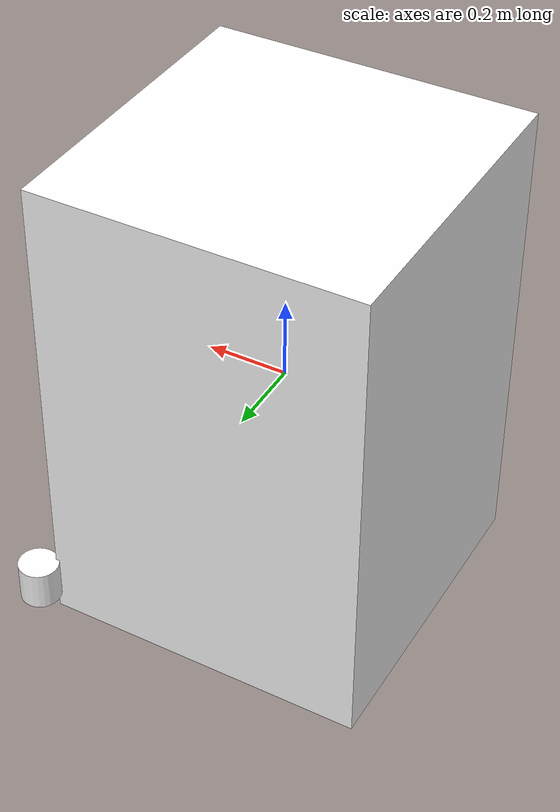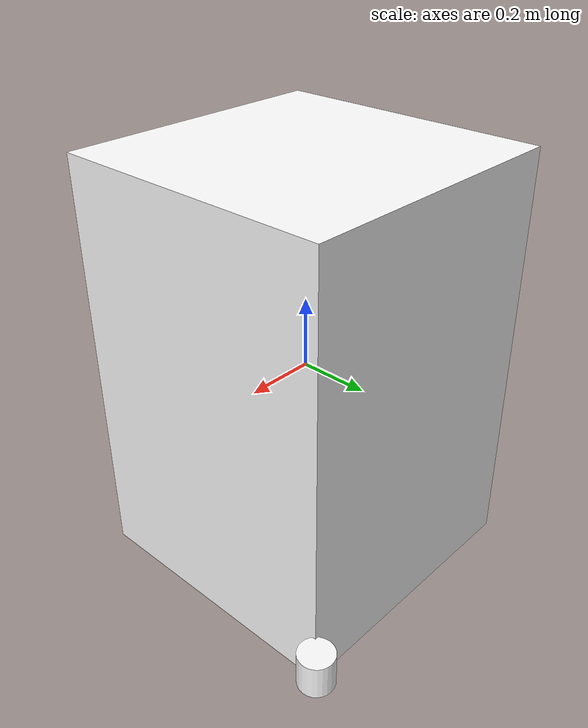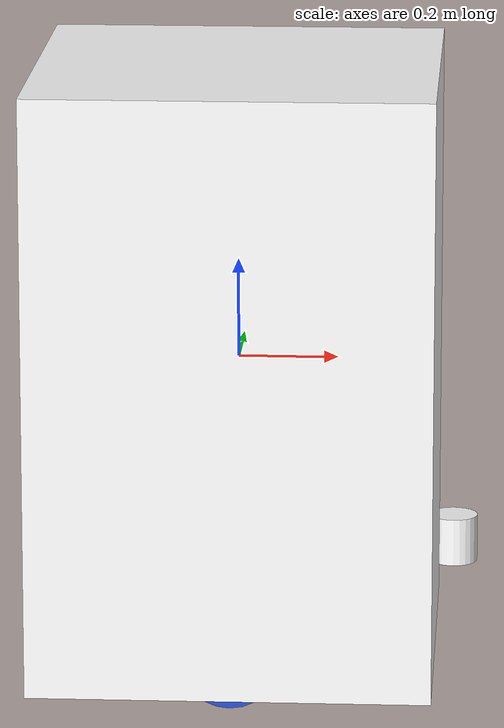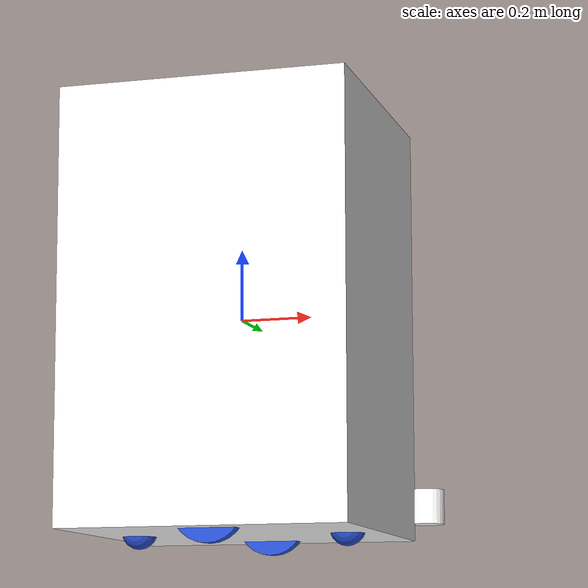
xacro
<?xml version="1.0" ?>
<robot name="m2wr" xmlns:xacro="http://www.ros.org/wiki/xacro">

  <material name="black">
    <color rgba="0.0 0.0 0.0 1.0"/>
  </material>
  <material name="blue">
    <color rgba="0.203125 0.23828125 0.28515625 1.0"/>
  </material>
  <material name="green">
    <color rgba="0.0 0.8 0.0 1.0"/>
  </material>
  <material name="grey">
    <color rgba="0.2 0.2 0.2 1.0"/>
  </material>
  <material name="orange">
    <color rgba="1.0 0.423529411765 0.0392156862745 1.0"/>
  </material>
  <material name="brown">
    <color rgba="0.870588235294 0.811764705882 0.764705882353 1.0"/>
  </material>
  <material name="red">
    <color rgba="0.80078125 0.12890625 0.1328125 1.0"/>
  </material>
  <material name="white">
    <color rgba="1.0 1.0 1.0 1.0"/>
  </material>

  <gazebo reference="link_chassis">
    <material>Gazebo/White</material>
  </gazebo>
  <gazebo reference="link_left_wheel">
    <material>Gazebo/Blue</material>
  </gazebo>
  <gazebo reference="link_right_wheel">
    <material>Gazebo/Blue</material>
  </gazebo>

  <gazebo reference="link_front_wheel">
    <material>Gazebo/Blue</material>
  </gazebo>

  <gazebo reference="link_back_wheel">
    <material>Gazebo/Blue</material>
  </gazebo>

 <gazebo reference="sensor_laser">
    <material>Gazebo/Red</material>
  </gazebo>

  <gazebo>
    <plugin filename="libgazebo_ros_diff_drive.so" name="differential_drive_controller">
      <legacyMode>false</legacyMode>
      <alwaysOn>true</alwaysOn>
      <updateRate>20</updateRate>
      <leftJoint>joint_left_wheel</leftJoint>
      <rightJoint>joint_right_wheel</rightJoint>
      <frontJoint>joint_front_wheel</frontJoint>
      <backJoint>joint_back_wheel</backJoint>
      <wheelSeparation>0.2</wheelSeparation>
      <wheelDiameter>0.2</wheelDiameter>
      <torque>0.1</torque>
      <commandTopic>cmd_vel</commandTopic>
      <odometryTopic>odom</odometryTopic>
      <odometryFrame>odom</odometryFrame>
      <robotBaseFrame>link_chassis</robotBaseFrame>
    </plugin>
  </gazebo>

  <gazebo reference="sensor_laser">
    <sensor type="ray" name="head_hokuyo_sensor">
      <pose>0 0 0 0 0 0</pose>
      <visualize>true</visualize>
      <update_rate>100</update_rate>
      <ray>
        <scan>
          <horizontal>
            <samples>666</samples>
            <resolution>1</resolution>
            <min_angle>-2.0943951024</min_angle>
            <max_angle>2.0943951024</max_angle>
          </horizontal>
        </scan>
        <range>
          <min>0.10</min>
          <max>5.6</max>
          <resolution>0.01</resolution>
        </range>
        <noise>
          <type>gaussian</type>
          <mean>0.0</mean>
          <stddev>0.01</stddev>
        </noise>
      </ray>
      <plugin name="gazebo_ros_head_hokuyo_controller" filename="libgazebo_ros_laser.so">
        <topicName>/m2wr/laser/scan</topicName>
        <frameName>sensor_laser</frameName>
      </plugin>
    </sensor>
  </gazebo>

  <link name="link_chassis">
    <!-- pose and inertial -->
    <pose>0 0 0.1 0 0 0</pose>
    <inertial>
      <mass value="5"/>
      <origin rpy="0 0 0" xyz="0 0 0.1"/>
      <inertia ixx="0.0395416666667" ixy="0" ixz="0" iyy="0.106208333333" iyz="0" izz="0.106208333333"/>
    </inertial>
    <!-- body -->
    <collision name="collision_chassis">
      <geometry>
        <box size="0.8 0.8 1.2"/>
      </geometry>
    </collision>
    <visual>
      <origin rpy="0 0 0" xyz="0 0 0"/>
      <geometry>
        <box size="0.8 0.8 1.2"/>
      </geometry>
      <material name="white"/>
    </visual>

  </link>

  <link name="sensor_laser">
    <inertial>
	<mass value="1" />
        <origin rpy="0 0 0" xyz="0 0 0" />
        <inertia ixx="0.1010458333" ixy="0" ixz="0" iyy="0.1010458333" iyz="0" izz="0.00125"/>

    </inertial>

    <visual>
        <origin xyz="0 0 0" rpy="0 0 0" />
        <geometry>
        <cylinder radius="0.05" length="0.1"/>
        </geometry>
        <material name="white" />
    </visual>

    <collision>
        <origin xyz="0 0 0" rpy="0 0 0"/>
        <geometry>
        <cylinder radius="0.05" length="0.1"/>
        </geometry>
    </collision>
    </link>

    <joint name="joint_sensor_laser" type="fixed">
    <origin xyz="0.43 0.43 -0.5" rpy="0 0 0.53"/>
    <parent link="link_chassis"/>
    <child link="sensor_laser"/>
  </joint>

  <link name="link_right_wheel">
    <inertial>
      <mass value="0.2"/>
      <origin rpy="0 1.5707 1.5707" xyz="0 0 0"/>
      <inertia ixx="0.000526666666667" ixy="0" ixz="0" iyy="0.000526666666667" iyz="0" izz="0.001"/>
    </inertial>
    <collision name="link_right_wheel_collision">
      <origin rpy="0 1.5707 1.5707" xyz="0 0 0"/>
      <geometry>
        <cylinder length="0.04" radius="0.1"/>
      </geometry>
    </collision>
    <visual name="link_right_wheel_visual">
      <origin rpy="0 1.5707 1.5707" xyz="0 0 0"/>
      <geometry>
        <cylinder length="0.04" radius="0.1"/>
      </geometry>
    </visual>
  </link>

  <joint name="joint_right_wheel" type="continuous">
    <origin rpy="0 0 0" xyz="0 0.30 -0.54"/>
    <child link="link_right_wheel"/>
    <parent link="link_chassis"/>
    <axis rpy="0 0 0" xyz="0 1 0"/>
    <limit effort="10000" velocity="1000"/>
    <joint_properties damping="1.0" friction="1.0"/>
  </joint>

  <link name="link_left_wheel">
    <inertial>
      <mass value="0.2"/>
      <origin rpy="0 1.5707 1.5707" xyz="0 0 0"/>
      <inertia ixx="0.000526666666667" ixy="0" ixz="0" iyy="0.000526666666667" iyz="0" izz="0.001"/>
    </inertial>
    <collision name="link_left_wheel_collision">
      <origin rpy="0 1.5707 1.5707" xyz="0 0 0"/>
      <geometry>
        <cylinder length="0.04" radius="0.1"/>
      </geometry>
    </collision>
    <visual name="link_left_wheel_visual">
      <origin rpy="0 1.5707 1.5707" xyz="0 0 0"/>
      <geometry>
        <cylinder length="0.04" radius="0.1"/>
      </geometry>
    </visual>
  </link>

  <joint name="joint_left_wheel" type="continuous">
    <origin rpy="0 0 0" xyz="0 -0.30 -0.54"/>
    <child link="link_left_wheel"/>
    <parent link="link_chassis"/>
    <axis rpy="0 0 0" xyz="0 1 0"/>
    <limit effort="10000" velocity="1000"/>
    <joint_properties damping="1.0" friction="1.0"/>
  </joint>

  <link name="link_front_wheel">
    <inertial>
      <mass value="0.2"/>
      <origin rpy="0 1.5707 1.5707" xyz="0 0 0"/>
      <inertia ixx="0.000526666666667" ixy="0" ixz="0" iyy="0.000526666666667" iyz="0" izz="0.001"/>
    </inertial>
    <collision name="link_front_wheel_collision">
      <origin rpy="0 1.5707 1.5707" xyz="0 0 0"/>
      <geometry>
        <sphere radius="0.05"/>
      </geometry>
    </collision>
    <visual name="link_front_wheel_visual">
      <origin rpy="0 1.5707 1.5707" xyz="0 0 0"/>
      <geometry>
        <sphere radius="0.05"/>
      </geometry>
    </visual>
  </link>

  <joint name="joint_front_wheel" type="continuous">
    <origin rpy="0 0 0" xyz="0.3 0 -0.585"/>
    <child link="link_front_wheel"/>
    <parent link="link_chassis"/>
    <axis rpy="0 0 0" xyz="0 1 0"/>
    <limit effort="10000" velocity="1000"/>
    <joint_properties damping="1.0" friction="1.0"/>
  </joint>

<link name="link_back_wheel">
    <inertial>
      <mass value="0.2"/>
      <origin rpy="0 1.5707 1.5707" xyz="0 0 0"/>
      <inertia ixx="0.000526666666667" ixy="0" ixz="0" iyy="0.000526666666667" iyz="0" izz="0.001"/>
    </inertial>
    <collision name="link_back_wheel_collision">
      <origin rpy="0 1.5707 1.5707" xyz="0 0 0"/>
      <geometry>
        <sphere radius="0.05"/>
      </geometry>
    </collision>
    <visual name="link_back_wheel_visual">
      <origin rpy="0 1.5707 1.5707" xyz="0 0 0"/>
      <geometry>
        <sphere radius="0.05"/>
      </geometry>
    </visual>
  </link>

  <joint name="joint_back_wheel" type="continuous">
    <origin rpy="0 0 0" xyz="-0.3 0 -0.585"/>
    <child link="link_back_wheel"/>
    <parent link="link_chassis"/>
    <axis rpy="0 0 0" xyz="0 1 0"/>
    <limit effort="10000" velocity="1000"/>
    <joint_properties damping="1.0" friction="1.0"/>
  </joint>

</robot>
